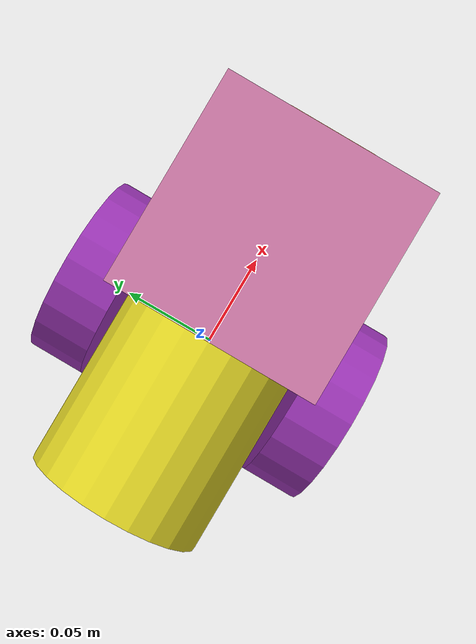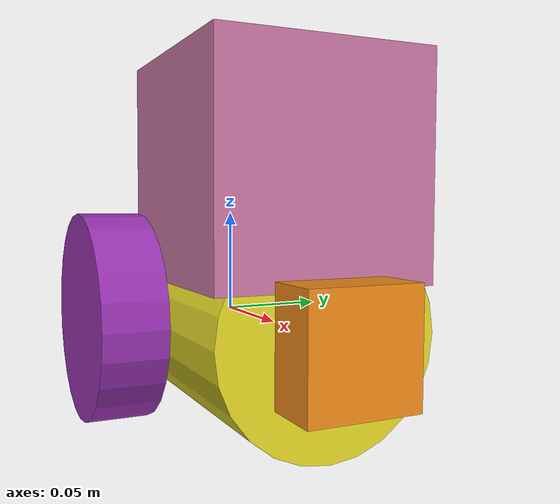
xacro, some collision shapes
<?xml version='1.0'?>

<robot name="my_robot" xmlns:xacro="http://www.ros.org/wiki/xacro">

  <link name="robot_footprint"></link>

  <xacro:include filename="$(find my_robot)/urdf/my_robot.gazebo" />

  <joint name="robot_footprint_joint" type="fixed">
    <origin xyz="0 0 0" rpy="0 0 0" />
    <parent link="robot_footprint"/>
    <child link="chassis" />
  </joint>

  <link name='chassis'>
    <pose>0 0 0.05 0 0 0</pose>

    <inertial>
      <mass value="15.0"/>
      <origin xyz="0.0 0 0" rpy=" 0 0 0"/>
      <inertia
          ixx="0.1" ixy="0" ixz="0"
          iyy="0.1" iyz="0"
          izz="0.1"
      />
    </inertial>

    <collision name='collision'>
      <origin xyz="0 0 0" rpy=" 0 1.5707 0"/>
      <geometry>
        <cylinder radius=".05" length=".2"/>
      </geometry>
    </collision>

    <visual name='chassis_visual'>
      <origin xyz="0 0 0" rpy=" 0 1.5707 0"/>
      <geometry>
        <cylinder radius=".05" length=".2"/>
      </geometry>
    </visual>

    <collision name='back_caster_collision'>
      <origin xyz="-0.06 0 -0.02" rpy=" 0 0 0"/>
      <geometry>
        <sphere radius="0.02"/>
      </geometry>
    </collision>

    <visual name='back_caster_visual'>
      <origin xyz="-0.06 0 -0.02" rpy=" 0 0 0"/>
      <geometry>
        <sphere radius="0.02"/>
      </geometry>
    </visual>

    <collision name='front_caster_collision'>
      <origin xyz="0.06 0 -0.02" rpy=" 0 0 0"/>
      <geometry>
        <sphere radius="0.02"/>
      </geometry>
    </collision>

    <visual name='front_caster_visual'>
      <origin xyz="0.06 0 -0.02" rpy=" 0 0 0"/>
      <geometry>
        <sphere radius="0.02"/>
      </geometry>
    </visual>

  </link>

  <gazebo reference="chassis">
    <material>Gazebo/Yellow</material>
  </gazebo>

  <link name='left_wheel'>
    <pose>0 0 0.05 0 0 0</pose>

    <inertial>
      <mass value="5.0"/>
      <origin xyz="0.0 0 0" rpy=" 0 0 0"/>
      <inertia
          ixx="0.1" ixy="0" ixz="0"
          iyy="0.1" iyz="0"
          izz="0.1"
      />
    </inertial>

    <collision name='collision'>
      <origin xyz="0 0 0" rpy=" 0 1.5707 1.5707"/>
      <geometry>
        <cylinder radius=".05" length=".03"/>
      </geometry>
    </collision>

    <visual name='left_wheel_visual'>
      <origin xyz="0 0 0" rpy=" 0 1.5707 1.5707"/>
      <geometry>
        <cylinder radius=".05" length=".03"/>
      </geometry>
    </visual>
  </link>

  <gazebo reference="left_wheel">
    <material>Gazebo/Purple</material>
  </gazebo>

  <joint type="continuous" name="left_wheel_hinge">
    <origin xyz="0 0.065 0" rpy="0 0 0"/>
    <child link="left_wheel"/>
    <parent link="chassis"/>
    <axis xyz="0 1 0" rpy="0 0 0"/>
    <limit effort="10000" velocity="1000"/>
    <dynamics damping="1.0" friction="1.0"/>
  </joint>

  <link name='right_wheel'>
    <pose>0 0 0.05 0 0 0</pose>

    <inertial>
      <mass value="5.0"/>
      <origin xyz="0.0 0 0" rpy=" 0 0 0"/>
      <inertia
          ixx="0.1" ixy="0" ixz="0"
          iyy="0.1" iyz="0"
          izz="0.1"
      />
    </inertial>

    <collision name='collision'>
      <origin xyz="0 0 0" rpy=" 0 1.5707 1.5707"/>
      <geometry>
        <cylinder radius=".05" length=".03"/>
      </geometry>
    </collision>

    <visual name='right_wheel_visual'>
      <origin xyz="0 0 0" rpy=" 0 1.5707 1.5707"/>
      <geometry>
        <cylinder radius=".05" length=".03"/>
      </geometry>
    </visual>
  </link>

  <gazebo reference="right_wheel">
    <material>Gazebo/Purple</material>
  </gazebo>

  <joint type="continuous" name="right_wheel_hinge">
    <origin xyz="0 -0.065 0" rpy="0 0 0"/>
    <child link="right_wheel"/>
    <parent link="chassis"/>
    <axis xyz="0 1 0" rpy="0 0 0"/>
    <limit effort="10000" velocity="1000"/>
    <dynamics damping="1.0" friction="1.0"/>
  </joint>

  <link name='camera'>
    <pose>0 0 0.05 0 0 0</pose>

    <inertial>
      <mass value="0.1"/>
      <origin xyz="0.0 0 0" rpy=" 0 0 0"/>
      <inertia
          ixx="1e-6" ixy="0" ixz="0"
          iyy="1e-6" iyz="0"
          izz="1e-6"
      />
    </inertial>

    <collision name='collision'>
      <origin xyz="0 0 0" rpy=" 0 0 0"/>
      <geometry>
        <box size=".05 .05 .05"/>
      </geometry>
    </collision>

    <visual name='camera_visual'>
      <origin xyz="0 0 0" rpy=" 0 0 0"/>
      <geometry>
        <box size=".05 .05 .05"/>
      </geometry>
    </visual>

  </link>

  <gazebo reference="camera">
    <material>Gazebo/Orange</material>
  </gazebo>

  <joint type="fixed" name="camera_joint">
    <origin xyz="0.1 0 0" rpy="0 0 0"/>
    <child link="camera"/>
    <parent link="chassis"/>
    <axis xyz="0 1 0" rpy="0 0 0"/>
    <limit effort="10000" velocity="1000"/>
    <dynamics damping="1.0" friction="1.0"/>
  </joint>

  <joint type="fixed" name="camera_optical_joint">
    <origin xyz="0.1 0 0" rpy="-1.5707 0 -1.5707"/>
    <parent link="camera"/>
    <child link="camera_link_optical"/>
  </joint>

  <link name="camera_link_optical">
  </link>

  <link name='hokuyo'>
    <pose>0 0 0.1 0 0 0</pose>

    <inertial>
      <mass value="1e-5"/>
      <origin xyz="0.0 0 0" rpy=" 0 0 0"/>
      <inertia
          ixx="1e-6" ixy="0" ixz="0"
          iyy="1e-6" iyz="0"
          izz="1e-6"
      />
    </inertial>

    <collision name='collision'>
      <origin xyz="0 0 0" rpy=" 0 0 0"/>
      <geometry>
        <box size=".1 .1 .1"/>
      </geometry>
    </collision>

    <visual name='hokuyo_visual'>
      <origin xyz="0 0 0" rpy=" 0 0 0"/>
      <geometry>
        <mesh filename="package://my_robot/meshes/hokuyo.dae"/>
      </geometry>
    </visual>

  </link>

  <joint type="fixed" name="hokuyo_joint">
    <origin xyz="0.05 0 0.07" rpy="0 0 0"/>
    <child link="hokuyo"/>
    <parent link="chassis"/>
    <axis xyz="0 1 0" rpy="0 0 0"/>
    <limit effort="10000" velocity="1000"/>
    <dynamics damping="1.0" friction="1.0"/>
  </joint>

</robot>
